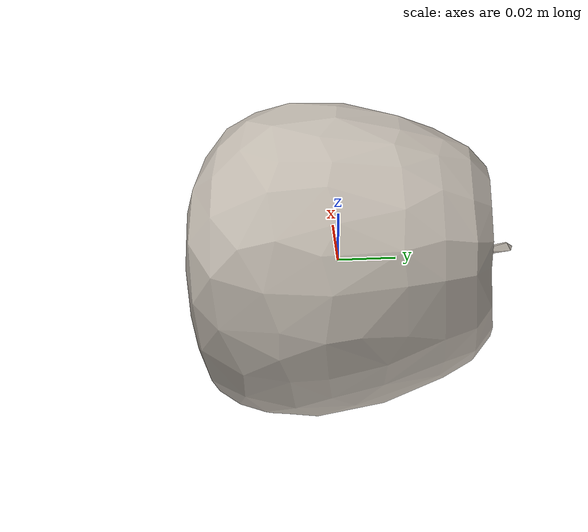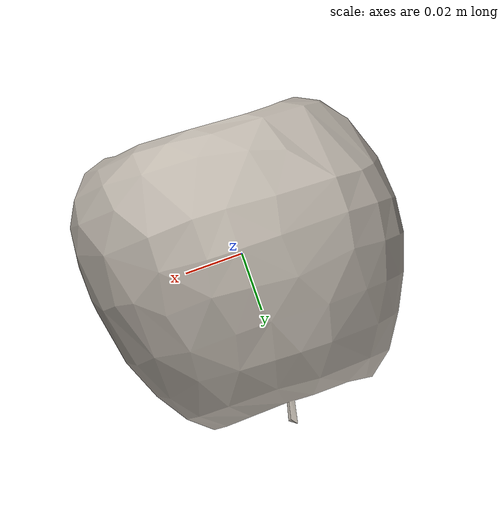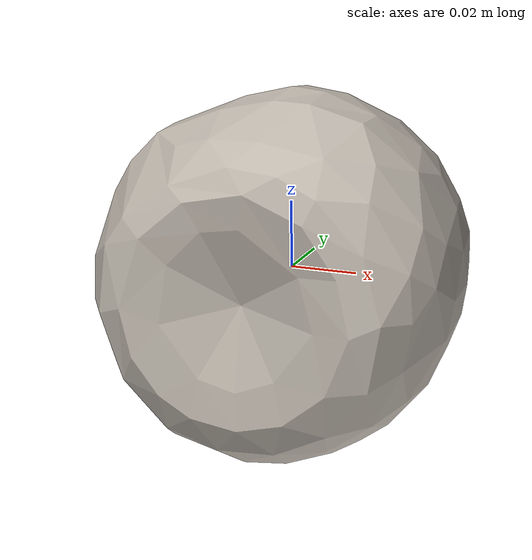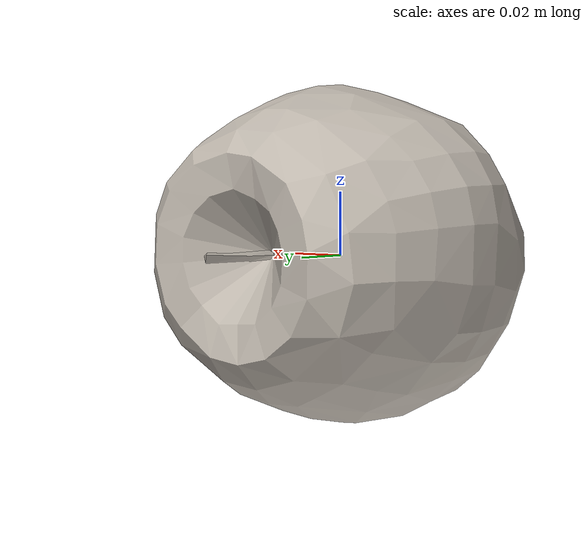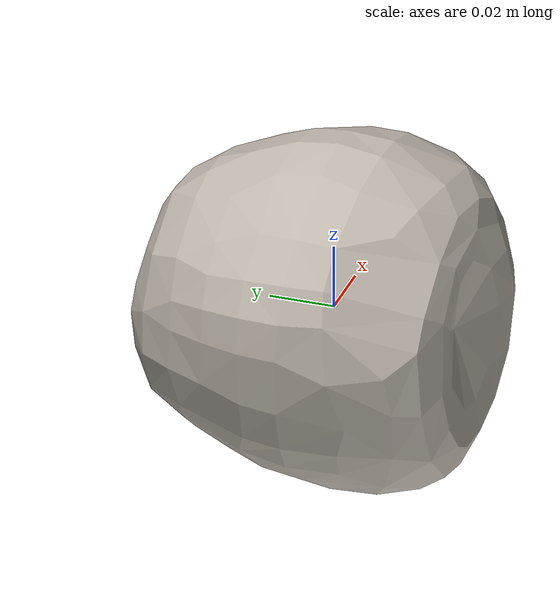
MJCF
<mujoco model="Apple_20">
  <compiler autolimits="true" boundmass="0.01" angle="radian"/>
  <default>
    <default class="/">
      <default class="__VISUAL_MJT__">
        <geom contype="0" conaffinity="0" group="0"/>
      </default>
      <default class="__STRUCTURAL_MJT__">
        <geom contype="8" conaffinity="15" group="4" friction="0.90000000000000002 0.90000000000000002 0.001" solref="0.025000000000000001 1" solimp="0.998 0.998 0.001"/>
      </default>
      <default class="__DYNAMIC_MJT__">
        <geom contype="1" conaffinity="15" group="4" friction="0.90000000000000002 0.90000000000000002 0.001" solref="0.025000000000000001 1" solimp="0.998 0.998 0.001"/>
      </default>
    </default>
  </default>
  <asset>
    <texture name="Apple2_Mat2" type="2d" file="Apple2_AlbedoTransparency2.png"/>
    <material name="material_Apple2_Mat2" class="/" texture="Apple2_Mat2" specular="0.5" shininess="0.5" rgba="1 1 1 1"/>
    <mesh name="Apple_20_apple_b5" class="/" file="Apple_20_apple_b5/Apple_20_apple_b5.obj" scale="1 1 1"/>
  </asset>
  <worldbody>
    <body name="Apple_20">
      <joint name="Apple_20_free" class="/" type="free" pos="0 0 0" axis="0 0 1" stiffness="0" range="0 0" armature="0" damping="0.10000000000000001" frictionloss="0"/>
      <body name="Apple_20_apple_b5" pos="-0 0.010919999999999999 0" quat="1 0 0 0">
        <geom name="Apple_20_apple_b5" class="__VISUAL_MJT__" type="mesh" material="material_Apple2_Mat2" shellinertia="false" mesh="Apple_20_apple_b5"/>
        <geom name="Apple_20_PrimitiveCollider_0" class="__DYNAMIC_MJT__" type="capsule" size="0.055376749485731125 0.0058731324970722198" rgba="0 1 0 1" pos="-0 -0.010919347405433655 0" quat="0.70710678118654757 0.70710678118654746 0 0"/>
      </body>
    </body>
  </worldbody>
</mujoco>
